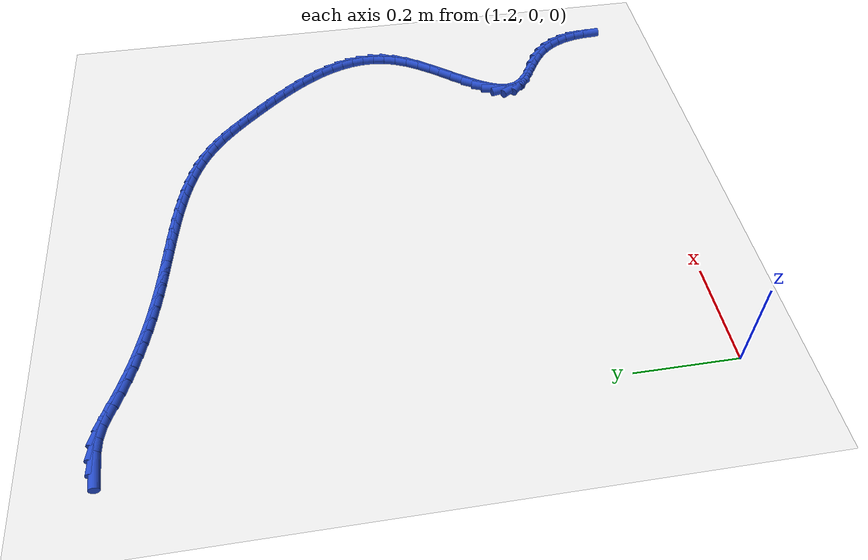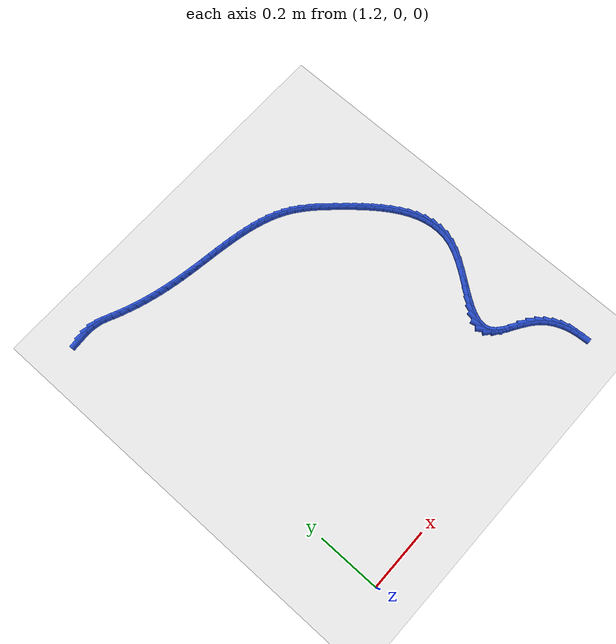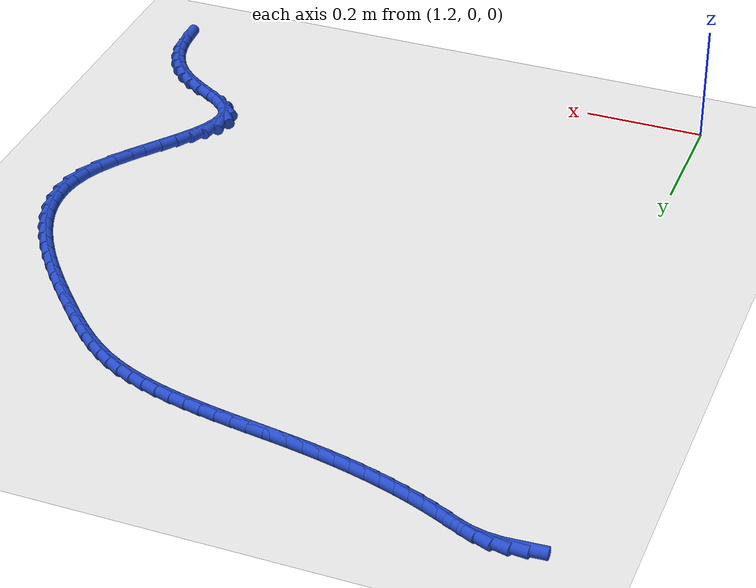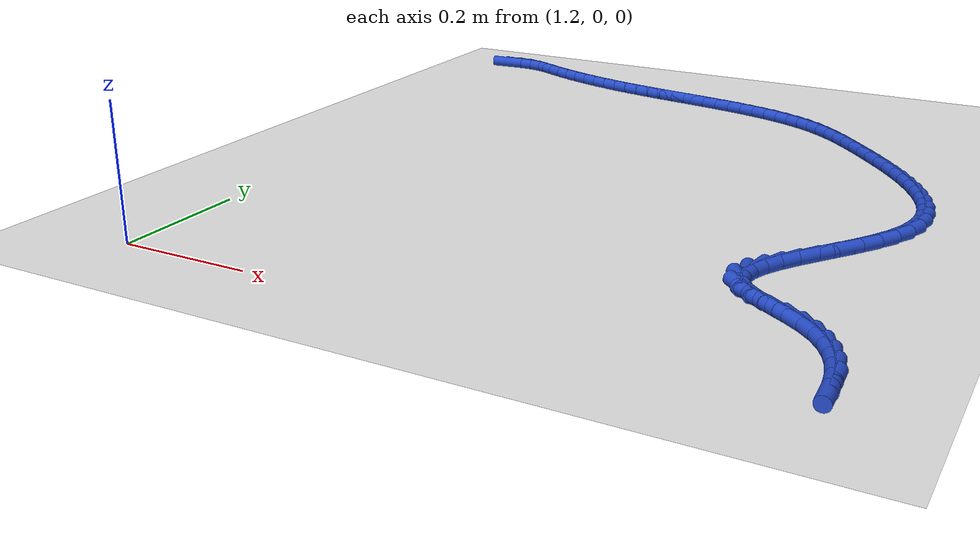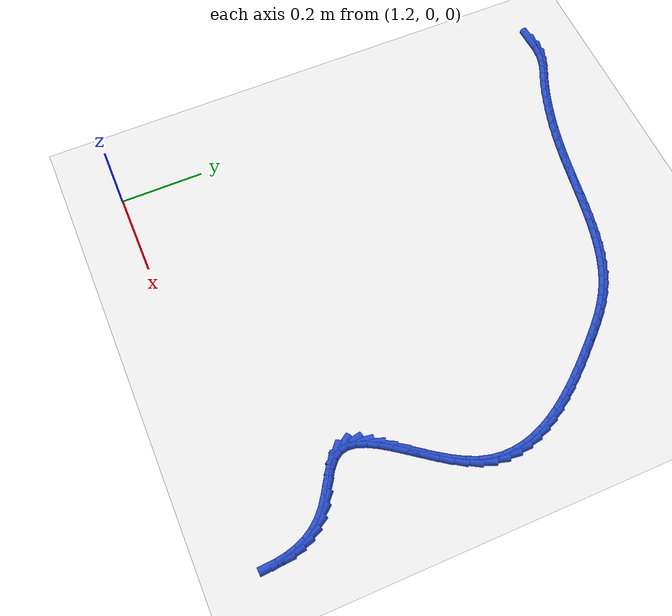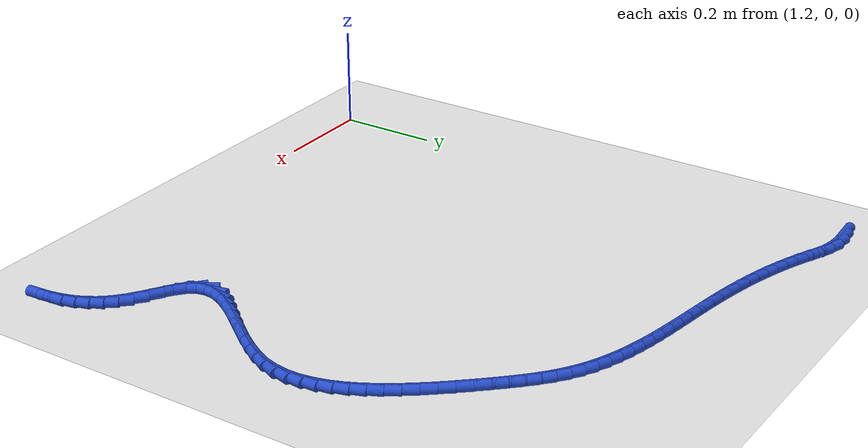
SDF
<sdf version="1.6">
 <world name="default">
  <model name="ground_plane">
   <static>1</static>
   <link name="link">
    <collision name="collision">
     <geometry><plane><normal>0 0 1</normal><size>100 100</size></plane></geometry>
     <surface><friction><ode><mu>100</mu><mu2>50</mu2></ode></friction></surface>
    </collision>
    <visual name="visual">
     <cast_shadows>0</cast_shadows>
     <geometry><plane><normal>0 0 1</normal><size>100 100</size></plane></geometry>
     <material>
      <script><uri>file://media/materials/scripts/gazebo.material</uri><name>Gazebo/WhiteGlow</name></script>
     </material>
    </visual>
   </link>
  </model>
  <model name="line">
   <link name="link_70">
    <pose>1.1589581540968892 1.1202611505341393 0.01 0 1.57 0.0611994217538666</pose>
    <collision name="collision">
     <geometry><cylinder><radius>0.01</radius><length>0.08</length></cylinder></geometry>
    </collision>
    <visual name="visual">
     <material>
      <script><name>Gazebo/Blue</name><uri>file://media/materials/scripts/gazebo.material</uri></script>
     </material>
     <geometry><cylinder><radius>0.01</radius><length>0.08</length></cylinder></geometry>
    </visual>
   </link>
   <link name="link_71">
    <pose>1.1839929926719779 1.1217951838307076 0.01 0 1.57 -0.07154446064471666</pose>
    <collision name="collision">
     <geometry><cylinder><radius>0.01</radius><length>0.08</length></cylinder></geometry>
    </collision>
    <visual name="visual">
     <material>
      <script><name>Gazebo/Blue</name><uri>file://media/materials/scripts/gazebo.material</uri></script>
     </material>
     <geometry><cylinder><radius>0.01</radius><length>0.08</length></cylinder></geometry>
    </visual>
   </link>
   <link name="link_72">
    <pose>1.2087941225886858 1.1200177666971256 0.01 0 1.57 -0.2204131755700757</pose>
    <collision name="collision">
     <geometry><cylinder><radius>0.01</radius><length>0.08</length></cylinder></geometry>
    </collision>
    <visual name="visual">
     <material>
      <script><name>Gazebo/Blue</name><uri>file://media/materials/scripts/gazebo.material</uri></script>
     </material>
     <geometry><cylinder><radius>0.01</radius><length>0.08</length></cylinder></geometry>
    </visual>
   </link>
   <link name="link_73">
    <pose>1.2332986169918776 1.1145274539026162 0.01 0 1.57 -0.3610902284726909</pose>
    <collision name="collision">
     <geometry><cylinder><radius>0.01</radius><length>0.08</length></cylinder></geometry>
    </collision>
    <visual name="visual">
     <material>
      <script><name>Gazebo/Blue</name><uri>file://media/materials/scripts/gazebo.material</uri></script>
     </material>
     <geometry><cylinder><radius>0.01</radius><length>0.08</length></cylinder></geometry>
    </visual>
   </link>
   <link name="link_74">
    <pose>1.2574949582882757 1.1053897526934688 0.01 0 1.57 -0.4204750961533314</pose>
    <collision name="collision">
     <geometry><cylinder><radius>0.01</radius><length>0.08</length></cylinder></geometry>
    </collision>
    <visual name="visual">
     <material>
      <script><name>Gazebo/Blue</name><uri>file://media/materials/scripts/gazebo.material</uri></script>
     </material>
     <geometry><cylinder><radius>0.01</radius><length>0.08</length></cylinder></geometry>
    </visual>
   </link>
   <link name="link_75">
    <pose>1.2815860327060415 1.0946176091994413 0.01 0 1.57 -0.40242799050139894</pose>
    <collision name="collision">
     <geometry><cylinder><radius>0.01</radius><length>0.08</length></cylinder></geometry>
    </collision>
    <visual name="visual">
     <material>
      <script><name>Gazebo/Blue</name><uri>file://media/materials/scripts/gazebo.material</uri></script>
     </material>
     <geometry><cylinder><radius>0.01</radius><length>0.08</length></cylinder></geometry>
    </visual>
   </link>
   <link name="link_76">
    <pose>1.3057911980313146 1.084314482843826 0.01 0 1.57 -0.3697244293657313</pose>
    <collision name="collision">
     <geometry><cylinder><radius>0.01</radius><length>0.08</length></cylinder></geometry>
    </collision>
    <visual name="visual">
     <material>
      <script><name>Gazebo/Blue</name><uri>file://media/materials/scripts/gazebo.material</uri></script>
     </material>
     <geometry><cylinder><radius>0.01</radius><length>0.08</length></cylinder></geometry>
    </visual>
   </link>
   <link name="link_77">
    <pose>1.330167625074271 1.0748674919380468 0.01 0 1.57 -0.33841661645001114</pose>
    <collision name="collision">
     <geometry><cylinder><radius>0.01</radius><length>0.08</length></cylinder></geometry>
    </collision>
    <visual name="visual">
     <material>
      <script><name>Gazebo/Blue</name><uri>file://media/materials/scripts/gazebo.material</uri></script>
     </material>
     <geometry><cylinder><radius>0.01</radius><length>0.08</length></cylinder></geometry>
    </visual>
   </link>
   <link name="link_78">
    <pose>1.3547307724270434 1.066222335960503 0.01 0 1.57 -0.3087033152100103</pose>
    <collision name="collision">
     <geometry><cylinder><radius>0.01</radius><length>0.08</length></cylinder></geometry>
    </collision>
    <visual name="visual">
     <material>
      <script><name>Gazebo/Blue</name><uri>file://media/materials/scripts/gazebo.material</uri></script>
     </material>
     <geometry><cylinder><radius>0.01</radius><length>0.08</length></cylinder></geometry>
    </visual>
   </link>
   <link name="link_79">
    <pose>1.3794960986475748 1.058324714027791 0.01 0 1.57 -0.28075512069613523</pose>
    <collision name="collision">
     <geometry><cylinder><radius>0.01</radius><length>0.08</length></cylinder></geometry>
    </collision>
    <visual name="visual">
     <material>
      <script><name>Gazebo/Blue</name><uri>file://media/materials/scripts/gazebo.material</uri></script>
     </material>
     <geometry><cylinder><radius>0.01</radius><length>0.08</length></cylinder></geometry>
    </visual>
   </link>
   <link name="link_80">
    <pose>1.4044790622938088 1.0511203252565058 0.01 0 1.57 -0.2547127809886578</pose>
    <collision name="collision">
     <geometry><cylinder><radius>0.01</radius><length>0.08</length></cylinder></geometry>
    </collision>
    <visual name="visual">
     <material>
      <script><name>Gazebo/Blue</name><uri>file://media/materials/scripts/gazebo.material</uri></script>
     </material>
     <geometry><cylinder><radius>0.01</radius><length>0.08</length></cylinder></geometry>
    </visual>
   </link>
   <link name="link_81">
    <pose>1.4296951219236886 1.0445548687632433 0.01 0 1.57 -0.2306869429809007</pose>
    <collision name="collision">
     <geometry><cylinder><radius>0.01</radius><length>0.08</length></cylinder></geometry>
    </collision>
    <visual name="visual">
     <material>
      <script><name>Gazebo/Blue</name><uri>file://media/materials/scripts/gazebo.material</uri></script>
     </material>
     <geometry><cylinder><radius>0.01</radius><length>0.08</length></cylinder></geometry>
    </visual>
   </link>
   <link name="link_82">
    <pose>1.4551597360951583 1.038574043664599 0.01 0 1.57 -0.20875911278902906</pose>
    <collision name="collision">
     <geometry><cylinder><radius>0.01</radius><length>0.08</length></cylinder></geometry>
    </collision>
    <visual name="visual">
     <material>
      <script><name>Gazebo/Blue</name><uri>file://media/materials/scripts/gazebo.material</uri></script>
     </material>
     <geometry><cylinder><radius>0.01</radius><length>0.08</length></cylinder></geometry>
    </visual>
   </link>
   <link name="link_83">
    <pose>1.4808883633661607 1.0331235490771686 0.01 0 1.57 -0.1889835487383789</pose>
    <collision name="collision">
     <geometry><cylinder><radius>0.01</radius><length>0.08</length></cylinder></geometry>
    </collision>
    <visual name="visual">
     <material>
      <script><name>Gazebo/Blue</name><uri>file://media/materials/scripts/gazebo.material</uri></script>
     </material>
     <geometry><cylinder><radius>0.01</radius><length>0.08</length></cylinder></geometry>
    </visual>
   </link>
   <link name="link_84">
    <pose>1.5068964622946392 1.0281490841175478 0.01 0 1.57 -0.17146783466972715</pose>
    <collision name="collision">
     <geometry><cylinder><radius>0.01</radius><length>0.08</length></cylinder></geometry>
    </collision>
    <visual name="visual">
     <material>
      <script><name>Gazebo/Blue</name><uri>file://media/materials/scripts/gazebo.material</uri></script>
     </material>
     <geometry><cylinder><radius>0.01</radius><length>0.08</length></cylinder></geometry>
    </visual>
   </link>
   <link name="link_85">
    <pose>1.5331974368084056 1.0235945893337763 0.01 0 1.57 -0.15819138361768345</pose>
    <collision name="collision">
     <geometry><cylinder><radius>0.01</radius><length>0.08</length></cylinder></geometry>
    </collision>
    <visual name="visual">
     <material>
      <script><name>Gazebo/Blue</name><uri>file://media/materials/scripts/gazebo.material</uri></script>
     </material>
     <geometry><cylinder><radius>0.01</radius><length>0.08</length></cylinder></geometry>
    </visual>
   </link>
   <link name="link_86">
    <pose>1.5597515911157567 1.0193585569493422 0.01 0 1.57 -0.15111643380307038</pose>
    <collision name="collision">
     <geometry><cylinder><radius>0.01</radius><length>0.08</length></cylinder></geometry>
    </collision>
    <visual name="visual">
     <material>
      <script><name>Gazebo/Blue</name><uri>file://media/materials/scripts/gazebo.material</uri></script>
     </material>
     <geometry><cylinder><radius>0.01</radius><length>0.08</length></cylinder></geometry>
    </visual>
   </link>
   <link name="link_87">
    <pose>1.5864626650923317 1.0152910654828757 0.01 0 1.57 -0.15020042961188665</pose>
    <collision name="collision">
     <geometry><cylinder><radius>0.01</radius><length>0.08</length></cylinder></geometry>
    </collision>
    <visual name="visual">
     <material>
      <script><name>Gazebo/Blue</name><uri>file://media/materials/scripts/gazebo.material</uri></script>
     </material>
     <geometry><cylinder><radius>0.01</radius><length>0.08</length></cylinder></geometry>
    </visual>
   </link>
   <link name="link_88">
    <pose>1.6132316501930821 1.0112398410655257 0.01 0 1.57 -0.15539841927579687</pose>
    <collision name="collision">
     <geometry><cylinder><radius>0.01</radius><length>0.08</length></cylinder></geometry>
    </collision>
    <visual name="visual">
     <material>
      <script><name>Gazebo/Blue</name><uri>file://media/materials/scripts/gazebo.material</uri></script>
     </material>
     <geometry><cylinder><radius>0.01</radius><length>0.08</length></cylinder></geometry>
    </visual>
   </link>
   <link name="link_89">
    <pose>1.6399595378729597 1.0070526098284414 0.01 0 1.57 -0.1667662752584248</pose>
    <collision name="collision">
     <geometry><cylinder><radius>0.01</radius><length>0.08</length></cylinder></geometry>
    </collision>
    <visual name="visual">
     <material>
      <script><name>Gazebo/Blue</name><uri>file://media/materials/scripts/gazebo.material</uri></script>
     </material>
     <geometry><cylinder><radius>0.01</radius><length>0.08</length></cylinder></geometry>
    </visual>
   </link>
   <link name="link_90">
    <pose>1.6665473195869163 1.002577097902772 0.01 0 1.57 -0.1844565591627697</pose>
    <collision name="collision">
     <geometry><cylinder><radius>0.01</radius><length>0.08</length></cylinder></geometry>
    </collision>
    <visual name="visual">
     <material>
      <script><name>Gazebo/Blue</name><uri>file://media/materials/scripts/gazebo.material</uri></script>
     </material>
     <geometry><cylinder><radius>0.01</radius><length>0.08</length></cylinder></geometry>
    </visual>
   </link>
   <link name="link_91">
    <pose>1.6928959867899036 0.9976610314196667 0.01 0 1.57 -0.20871045109518677</pose>
    <collision name="collision">
     <geometry><cylinder><radius>0.01</radius><length>0.08</length></cylinder></geometry>
    </collision>
    <visual name="visual">
     <material>
      <script><name>Gazebo/Blue</name><uri>file://media/materials/scripts/gazebo.material</uri></script>
     </material>
     <geometry><cylinder><radius>0.01</radius><length>0.08</length></cylinder></geometry>
    </visual>
   </link>
   <link name="link_92">
    <pose>1.7189065309368723 0.9921521365102743 0.01 0 1.57 -0.23984341753387384</pose>
    <collision name="collision">
     <geometry><cylinder><radius>0.01</radius><length>0.08</length></cylinder></geometry>
    </collision>
    <visual name="visual">
     <material>
      <script><name>Gazebo/Blue</name><uri>file://media/materials/scripts/gazebo.material</uri></script>
     </material>
     <geometry><cylinder><radius>0.01</radius><length>0.08</length></cylinder></geometry>
    </visual>
   </link>
   <link name="link_93">
    <pose>1.7444799434827747 0.9858981393057441 0.01 0 1.57 -0.2782208927456842</pose>
    <collision name="collision">
     <geometry><cylinder><radius>0.01</radius><length>0.08</length></cylinder></geometry>
    </collision>
    <visual name="visual">
     <material>
      <script><name>Gazebo/Blue</name><uri>file://media/materials/scripts/gazebo.material</uri></script>
     </material>
     <geometry><cylinder><radius>0.01</radius><length>0.08</length></cylinder></geometry>
    </visual>
   </link>
   <link name="link_94">
    <pose>1.769517215882562 0.9787467659372253 0.01 0 1.57 -0.3242189553139659</pose>
    <collision name="collision">
     <geometry><cylinder><radius>0.01</radius><length>0.08</length></cylinder></geometry>
    </collision>
    <visual name="visual">
     <material>
      <script><name>Gazebo/Blue</name><uri>file://media/materials/scripts/gazebo.material</uri></script>
     </material>
     <geometry><cylinder><radius>0.01</radius><length>0.08</length></cylinder></geometry>
    </visual>
   </link>
   <link name="link_95">
    <pose>1.793919339591187 0.9705457425358668 0.01 0 1.57 -0.3781643731037044</pose>
    <collision name="collision">
     <geometry><cylinder><radius>0.01</radius><length>0.08</length></cylinder></geometry>
    </collision>
    <visual name="visual">
     <material>
      <script><name>Gazebo/Blue</name><uri>file://media/materials/scripts/gazebo.material</uri></script>
     </material>
     <geometry><cylinder><radius>0.01</radius><length>0.08</length></cylinder></geometry>
    </visual>
   </link>
   <link name="link_96">
    <pose>1.8175873060636003 0.961142795232818 0.01 0 1.57 -0.4402496702399277</pose>
    <collision name="collision">
     <geometry><cylinder><radius>0.01</radius><length>0.08</length></cylinder></geometry>
    </collision>
    <visual name="visual">
     <material>
      <script><name>Gazebo/Blue</name><uri>file://media/materials/scripts/gazebo.material</uri></script>
     </material>
     <geometry><cylinder><radius>0.01</radius><length>0.08</length></cylinder></geometry>
    </visual>
   </link>
   <link name="link_97">
    <pose>1.8404221067547526 0.9503856501592274 0.01 0 1.57 -0.5104238785693327</pose>
    <collision name="collision">
     <geometry><cylinder><radius>0.01</radius><length>0.08</length></cylinder></geometry>
    </collision>
    <visual name="visual">
     <material>
      <script><name>Gazebo/Blue</name><uri>file://media/materials/scripts/gazebo.material</uri></script>
     </material>
     <geometry><cylinder><radius>0.01</radius><length>0.08</length></cylinder></geometry>
    </visual>
   </link>
   <link name="link_98">
    <pose>1.8623247331195971 0.9381220334462449 0.01 0 1.57 -0.5873345692629962</pose>
    <collision name="collision">
     <geometry><cylinder><radius>0.01</radius><length>0.08</length></cylinder></geometry>
    </collision>
    <visual name="visual">
     <material>
      <script><name>Gazebo/Blue</name><uri>file://media/materials/scripts/gazebo.material</uri></script>
     </material>
     <geometry><cylinder><radius>0.01</radius><length>0.08</length></cylinder></geometry>
    </visual>
   </link>
   <link name="link_99">
    <pose>1.8832133101495303 0.9242164626469254 0.01 0 1.57 -0.659608445914308</pose>
    <collision name="collision">
     <geometry><cylinder><radius>0.01</radius><length>0.08</length></cylinder></geometry>
    </collision>
    <visual name="visual">
     <material>
      <script><name>Gazebo/Blue</name><uri>file://media/materials/scripts/gazebo.material</uri></script>
     </material>
     <geometry><cylinder><radius>0.01</radius><length>0.08</length></cylinder></geometry>
    </visual>
   </link>
   <link name="link_100">
    <pose>1.9031963613513074 0.9087200520401008 0.01 0 1.57 -0.7196502114175876</pose>
    <collision name="collision">
     <geometry><cylinder><radius>0.01</radius><length>0.08</length></cylinder></geometry>
    </collision>
    <visual name="visual">
     <material>
      <script><name>Gazebo/Blue</name><uri>file://media/materials/scripts/gazebo.material</uri></script>
     </material>
     <geometry><cylinder><radius>0.01</radius><length>0.08</length></cylinder></geometry>
    </visual>
   </link>
   <link name="link_101">
    <pose>1.9225012039849396 0.8918003376390824 0.01 0 1.57 -0.7669812712496561</pose>
    <collision name="collision">
     <geometry><cylinder><radius>0.01</radius><length>0.08</length></cylinder></geometry>
    </collision>
    <visual name="visual">
     <material>
      <script><name>Gazebo/Blue</name><uri>file://media/materials/scripts/gazebo.material</uri></script>
     </material>
     <geometry><cylinder><radius>0.01</radius><length>0.08</length></cylinder></geometry>
    </visual>
   </link>
   <link name="link_102">
    <pose>1.9413569611989472 0.8736266252865433 0.01 0 1.57 -0.8018268916068064</pose>
    <collision name="collision">
     <geometry><cylinder><radius>0.01</radius><length>0.08</length></cylinder></geometry>
    </collision>
    <visual name="visual">
     <material>
      <script><name>Gazebo/Blue</name><uri>file://media/materials/scripts/gazebo.material</uri></script>
     </material>
     <geometry><cylinder><radius>0.01</radius><length>0.08</length></cylinder></geometry>
    </visual>
   </link>
   <link name="link_103">
    <pose>1.959992756141852 0.8543682208251577 0.01 0 1.57 -0.824761752444399</pose>
    <collision name="collision">
     <geometry><cylinder><radius>0.01</radius><length>0.08</length></cylinder></geometry>
    </collision>
    <visual name="visual">
     <material>
      <script><name>Gazebo/Blue</name><uri>file://media/materials/scripts/gazebo.material</uri></script>
     </material>
     <geometry><cylinder><radius>0.01</radius><length>0.08</length></cylinder></geometry>
    </visual>
   </link>
   <link name="link_104">
    <pose>1.9786377119621754 0.834194430097599 0.01 0 1.57 -0.8381616622709979</pose>
    <collision name="collision">
     <geometry><cylinder><radius>0.01</radius><length>0.08</length></cylinder></geometry>
    </collision>
    <visual name="visual">
     <material>
      <script><name>Gazebo/Blue</name><uri>file://media/materials/scripts/gazebo.material</uri></script>
     </material>
     <geometry><cylinder><radius>0.01</radius><length>0.08</length></cylinder></geometry>
    </visual>
   </link>
   <link name="link_105">
    <pose>1.9974690169691591 0.8132631635757033 0.01 0 1.57 -0.8539542199622712</pose>
    <collision name="collision">
     <geometry><cylinder><radius>0.01</radius><length>0.08</length></cylinder></geometry>
    </collision>
    <visual name="visual">
     <material>
      <script><name>Gazebo/Blue</name><uri>file://media/materials/scripts/gazebo.material</uri></script>
     </material>
     <geometry><cylinder><radius>0.01</radius><length>0.08</length></cylinder></geometry>
    </visual>
   </link>
   <link name="link_106">
    <pose>2.0163022103125305 0.7916529798676375 0.01 0 1.57 -0.8771225827197177</pose>
    <collision name="collision">
     <geometry><cylinder><radius>0.01</radius><length>0.08</length></cylinder></geometry>
    </collision>
    <visual name="visual">
     <material>
      <script><name>Gazebo/Blue</name><uri>file://media/materials/scripts/gazebo.material</uri></script>
     </material>
     <geometry><cylinder><radius>0.01</radius><length>0.08</length></cylinder></geometry>
    </visual>
   </link>
   <link name="link_107">
    <pose>2.034799029303389 0.7694086908903095 0.01 0 1.57 -0.9080616971966106</pose>
    <collision name="collision">
     <geometry><cylinder><radius>0.01</radius><length>0.08</length></cylinder></geometry>
    </collision>
    <visual name="visual">
     <material>
      <script><name>Gazebo/Blue</name><uri>file://media/materials/scripts/gazebo.material</uri></script>
     </material>
     <geometry><cylinder><radius>0.01</radius><length>0.08</length></cylinder></geometry>
    </visual>
   </link>
   <link name="link_108">
    <pose>2.0526206467191037 0.7465749846924996 0.01 0 1.57 -0.9474746524748668</pose>
    <collision name="collision">
     <geometry><cylinder><radius>0.01</radius><length>0.08</length></cylinder></geometry>
    </collision>
    <visual name="visual">
     <material>
      <script><name>Gazebo/Blue</name><uri>file://media/materials/scripts/gazebo.material</uri></script>
     </material>
     <geometry><cylinder><radius>0.01</radius><length>0.08</length></cylinder></geometry>
    </visual>
   </link>
   <link name="link_109">
    <pose>2.069428235337046 0.7231965493229903 0.01 0 1.57 -0.9963747948988158</pose>
    <collision name="collision">
     <geometry><cylinder><radius>0.01</radius><length>0.08</length></cylinder></geometry>
    </collision>
    <visual name="visual">
     <material>
      <script><name>Gazebo/Blue</name><uri>file://media/materials/scripts/gazebo.material</uri></script>
     </material>
     <geometry><cylinder><radius>0.01</radius><length>0.08</length></cylinder></geometry>
    </visual>
   </link>
   <link name="link_110">
    <pose>2.084882967934585 0.699318072830563 0.01 0 1.57 -1.0560602162386132</pose>
    <collision name="collision">
     <geometry><cylinder><radius>0.01</radius><length>0.08</length></cylinder></geometry>
    </collision>
    <visual name="visual">
     <material>
      <script><name>Gazebo/Blue</name><uri>file://media/materials/scripts/gazebo.material</uri></script>
     </material>
     <geometry><cylinder><radius>0.01</radius><length>0.08</length></cylinder></geometry>
    </visual>
   </link>
   <link name="link_111">
    <pose>2.09864601728909 0.6749842432639989 0.01 0 1.57 -1.128043828531807</pose>
    <collision name="collision">
     <geometry><cylinder><radius>0.01</radius><length>0.08</length></cylinder></geometry>
    </collision>
    <visual name="visual">
     <material>
      <script><name>Gazebo/Blue</name><uri>file://media/materials/scripts/gazebo.material</uri></script>
     </material>
     <geometry><cylinder><radius>0.01</radius><length>0.08</length></cylinder></geometry>
    </visual>
   </link>
   <link name="link_112">
    <pose>2.110378556177932 0.6502397486720799 0.01 0 1.57 -1.2138852815052226</pose>
    <collision name="collision">
     <geometry><cylinder><radius>0.01</radius><length>0.08</length></cylinder></geometry>
    </collision>
    <visual name="visual">
     <material>
      <script><name>Gazebo/Blue</name><uri>file://media/materials/scripts/gazebo.material</uri></script>
     </material>
     <geometry><cylinder><radius>0.01</radius><length>0.08</length></cylinder></geometry>
    </visual>
   </link>
   <link name="link_113">
    <pose>2.1197417573784807 0.6251292771035871 0.01 0 1.57 -1.3148533321145586</pose>
    <collision name="collision">
     <geometry><cylinder><radius>0.01</radius><length>0.08</length></cylinder></geometry>
    </collision>
    <visual name="visual">
     <material>
      <script><name>Gazebo/Blue</name><uri>file://media/materials/scripts/gazebo.material</uri></script>
     </material>
     <geometry><cylinder><radius>0.01</radius><length>0.08</length></cylinder></geometry>
    </visual>
   </link>
   <link name="link_114">
    <pose>2.1263967936681056 0.5996975166073026 0.01 0 1.57 -1.4313618739578957</pose>
    <collision name="collision">
     <geometry><cylinder><radius>0.01</radius><length>0.08</length></cylinder></geometry>
    </collision>
    <visual name="visual">
     <material>
      <script><name>Gazebo/Blue</name><uri>file://media/materials/scripts/gazebo.material</uri></script>
     </material>
     <geometry><cylinder><radius>0.01</radius><length>0.08</length></cylinder></geometry>
    </visual>
   </link>
   <link name="link_115">
    <pose>2.1300048378241763 0.5739891552320077 0.01 0 1.57 -1.5622297495097623</pose>
    <collision name="collision">
     <geometry><cylinder><radius>0.01</radius><length>0.08</length></cylinder></geometry>
    </collision>
    <visual name="visual">
     <material>
      <script><name>Gazebo/Blue</name><uri>file://media/materials/scripts/gazebo.material</uri></script>
     </material>
     <geometry><cylinder><radius>0.01</radius><length>0.08</length></cylinder></geometry>
    </visual>
   </link>
   <link name="link_116">
    <pose>2.1302270626240634 0.548048881026484 0.01 0 1.57 1.4375395640072908</pose>
    <collision name="collision">
     <geometry><cylinder><radius>0.01</radius><length>0.08</length></cylinder></geometry>
    </collision>
    <visual name="visual">
     <material>
      <script><name>Gazebo/Blue</name><uri>file://media/materials/scripts/gazebo.material</uri></script>
     </material>
     <geometry><cylinder><radius>0.01</radius><length>0.08</length></cylinder></geometry>
    </visual>
   </link>
   <link name="link_117">
    <pose>2.1267246408451363 0.5219213820395123 0.01 0 1.57 1.2903803343829274</pose>
    <collision name="collision">
     <geometry><cylinder><radius>0.01</radius><length>0.08</length></cylinder></geometry>
    </collision>
    <visual name="visual">
     <material>
      <script><name>Gazebo/Blue</name><uri>file://media/materials/scripts/gazebo.material</uri></script>
     </material>
     <geometry><cylinder><radius>0.01</radius><length>0.08</length></cylinder></geometry>
    </visual>
   </link>
   <link name="link_118">
    <pose>2.119158745264766 0.4956513463198753 0.01 0 1.57 1.1492733049463564</pose>
    <collision name="collision">
     <geometry><cylinder><radius>0.01</radius><length>0.08</length></cylinder></geometry>
    </collision>
    <visual name="visual">
     <material>
      <script><name>Gazebo/Blue</name><uri>file://media/materials/scripts/gazebo.material</uri></script>
     </material>
     <geometry><cylinder><radius>0.01</radius><length>0.08</length></cylinder></geometry>
    </visual>
   </link>
   <link name="link_119">
    <pose>2.1073407657382033 0.46929549178435065 0.01 0 1.57 1.043694700651742</pose>
    <collision name="collision">
     <geometry><cylinder><radius>0.01</radius><length>0.08</length></cylinder></geometry>
    </collision>
    <visual name="visual">
     <material>
      <script><name>Gazebo/Blue</name><uri>file://media/materials/scripts/gazebo.material</uri></script>
     </material>
     <geometry><cylinder><radius>0.01</radius><length>0.08</length></cylinder></geometry>
    </visual>
   </link>
   <link name="link_120">
    <pose>2.092028014569214 0.4429862888696761 0.01 0 1.57 0.9753377513030134</pose>
    <collision name="collision">
     <geometry><cylinder><radius>0.01</radius><length>0.08</length></cylinder></geometry>
    </collision>
    <visual name="visual">
     <material>
      <script><name>Gazebo/Blue</name><uri>file://media/materials/scripts/gazebo.material</uri></script>
     </material>
     <geometry><cylinder><radius>0.01</radius><length>0.08</length></cylinder></geometry>
    </visual>
   </link>
   <link name="link_121">
    <pose>2.0743450612596317 0.4168856191532925 0.01 0 1.57 0.9365588175868333</pose>
    <collision name="collision">
     <geometry><cylinder><radius>0.01</radius><length>0.08</length></cylinder></geometry>
    </collision>
    <visual name="visual">
     <material>
      <script><name>Gazebo/Blue</name><uri>file://media/materials/scripts/gazebo.material</uri></script>
     </material>
     <geometry><cylinder><radius>0.01</radius><length>0.08</length></cylinder></geometry>
    </visual>
   </link>
   <link name="link_122">
    <pose>2.0554172881126562 0.39115542930439445 0.01 0 1.57 0.9235243078568612</pose>
    <collision name="collision">
     <geometry><cylinder><radius>0.01</radius><length>0.08</length></cylinder></geometry>
    </collision>
    <visual name="visual">
     <material>
      <script><name>Gazebo/Blue</name><uri>file://media/materials/scripts/gazebo.material</uri></script>
     </material>
     <geometry><cylinder><radius>0.01</radius><length>0.08</length></cylinder></geometry>
    </visual>
   </link>
   <link name="link_123">
    <pose>2.0363700774314855 0.36595766599217766 0.01 0 1.57 0.9361363839001391</pose>
    <collision name="collision">
     <geometry><cylinder><radius>0.01</radius><length>0.08</length></cylinder></geometry>
    </collision>
    <visual name="visual">
     <material>
      <script><name>Gazebo/Blue</name><uri>file://media/materials/scripts/gazebo.material</uri></script>
     </material>
     <geometry><cylinder><radius>0.01</radius><length>0.08</length></cylinder></geometry>
    </visual>
   </link>
   <link name="link_124">
    <pose>2.0183288115193183 0.34145427588583677 0.01 0 1.57 0.9785540499055176</pose>
    <collision name="collision">
     <geometry><cylinder><radius>0.01</radius><length>0.08</length></cylinder></geometry>
    </collision>
    <visual name="visual">
     <material>
      <script><name>Gazebo/Blue</name><uri>file://media/materials/scripts/gazebo.material</uri></script>
     </material>
     <geometry><cylinder><radius>0.01</radius><length>0.08</length></cylinder></geometry>
    </visual>
   </link>
   <link name="link_125">
    <pose>2.0024188726793524 0.31780720565456677 0.01 0 1.57 1.0609440756936885</pose>
    <collision name="collision">
     <geometry><cylinder><radius>0.01</radius><length>0.08</length></cylinder></geometry>
    </collision>
    <visual name="visual">
     <material>
      <script><name>Gazebo/Blue</name><uri>file://media/materials/scripts/gazebo.material</uri></script>
     </material>
     <geometry><cylinder><radius>0.01</radius><length>0.08</length></cylinder></geometry>
    </visual>
   </link>
   <link name="link_126">
    <pose>1.989765643214787 0.2951784019675623 0.01 0 1.57 1.2027422621874964</pose>
    <collision name="collision">
     <geometry><cylinder><radius>0.01</radius><length>0.08</length></cylinder></geometry>
    </collision>
    <visual name="visual">
     <material>
      <script><name>Gazebo/Blue</name><uri>file://media/materials/scripts/gazebo.material</uri></script>
     </material>
     <geometry><cylinder><radius>0.01</radius><length>0.08</length></cylinder></geometry>
    </visual>
   </link>
   <link name="link_127">
    <pose>1.9814945054288207 0.2737298114940189 0.01 0 1.57 1.4342005323357805</pose>
    <collision name="collision">
     <geometry><cylinder><radius>0.01</radius><length>0.08</length></cylinder></geometry>
    </collision>
    <visual name="visual">
     <material>
      <script><name>Gazebo/Blue</name><uri>file://media/materials/scripts/gazebo.material</uri></script>
     </material>
     <geometry><cylinder><radius>0.01</radius><length>0.08</length></cylinder></geometry>
    </visual>
   </link>
   <link name="link_128">
    <pose>1.9787308416246523 0.2536233809031315 0.01 0 1.57 -1.365725111255191</pose>
    <collision name="collision">
     <geometry><cylinder><radius>0.01</radius><length>0.08</length></cylinder></geometry>
    </collision>
    <visual name="visual">
     <material>
      <script><name>Gazebo/Blue</name><uri>file://media/materials/scripts/gazebo.material</uri></script>
     </material>
     <geometry><cylinder><radius>0.01</radius><length>0.08</length></cylinder></geometry>
    </visual>
   </link>
   <link name="link_129">
    <pose>1.9826000341054792 0.2350210568640948 0.01 0 1.57 -0.9741292234277197</pose>
    <collision name="collision">
     <geometry><cylinder><radius>0.01</radius><length>0.08</length></cylinder></geometry>
    </collision>
    <visual name="visual">
     <material>
      <script><name>Gazebo/Blue</name><uri>file://media/materials/scripts/gazebo.material</uri></script>
     </material>
     <geometry><cylinder><radius>0.01</radius><length>0.08</length></cylinder></geometry>
    </visual>
   </link>
   <link name="link_130">
    <pose>1.9941213094843384 0.21805942399652792 0.01 0 1.57 -0.7078852835850433</pose>
    <collision name="collision">
     <geometry><cylinder><radius>0.01</radius><length>0.08</length></cylinder></geometry>
    </collision>
    <visual name="visual">
     <material>
      <script><name>Gazebo/Blue</name><uri>file://media/materials/scripts/gazebo.material</uri></script>
     </material>
     <geometry><cylinder><radius>0.01</radius><length>0.08</length></cylinder></geometry>
    </visual>
   </link>
   <link name="link_131">
    <pose>2.01239784792711 0.202417297158408 0.01 0 1.57 -0.5898386115361219</pose>
    <collision name="collision">
     <geometry><cylinder><radius>0.01</radius><length>0.08</length></cylinder></geometry>
    </collision>
    <visual name="visual">
     <material>
      <script><name>Gazebo/Blue</name><uri>file://media/materials/scripts/gazebo.material</uri></script>
     </material>
     <geometry><cylinder><radius>0.01</radius><length>0.08</length></cylinder></geometry>
    </visual>
   </link>
   <link name="link_132">
    <pose>2.034869971936396 0.18737621171728513 0.01 0 1.57 -0.5627345265069473</pose>
    <collision name="collision">
     <geometry><cylinder><radius>0.01</radius><length>0.08</length></cylinder></geometry>
    </collision>
    <visual name="visual">
     <material>
      <script><name>Gazebo/Blue</name><uri>file://media/materials/scripts/gazebo.material</uri></script>
     </material>
     <geometry><cylinder><radius>0.01</radius><length>0.08</length></cylinder></geometry>
    </visual>
   </link>
   <link name="link_133">
    <pose>2.058922805142359 0.172204515273409 0.01 0 1.57 -0.6084157832033272</pose>
    <collision name="collision">
     <geometry><cylinder><radius>0.01</radius><length>0.08</length></cylinder></geometry>
    </collision>
    <visual name="visual">
     <material>
      <script><name>Gazebo/Blue</name><uri>file://media/materials/scripts/gazebo.material</uri></script>
     </material>
     <geometry><cylinder><radius>0.01</radius><length>0.08</length></cylinder></geometry>
    </visual>
   </link>
   <link name="link_134">
    <pose>2.081941471175161 0.15617055542702973 0.01 0 1.57 -0.7286494706294697</pose>
    <collision name="collision">
     <geometry><cylinder><radius>0.01</radius><length>0.08</length></cylinder></geometry>
    </collision>
    <visual name="visual">
     <material>
      <script><name>Gazebo/Blue</name><uri>file://media/materials/scripts/gazebo.material</uri></script>
     </material>
     <geometry><cylinder><radius>0.01</radius><length>0.08</length></cylinder></geometry>
    </visual>
   </link>
   <link name="link_135">
    <pose>2.1015990574566437 0.13862638915476314 0.01 0 1.57 -0.8793934203669982</pose>
    <collision name="collision">
     <geometry><cylinder><radius>0.01</radius><length>0.08</length></cylinder></geometry>
    </collision>
    <visual name="visual">
     <material>
      <script><name>Gazebo/Blue</name><uri>file://media/materials/scripts/gazebo.material</uri></script>
     </material>
     <geometry><cylinder><radius>0.01</radius><length>0.08</length></cylinder></geometry>
    </visual>
   </link>
   <link name="link_136">
    <pose>2.1174531818034232 0.11947189530753104 0.01 0 1.57 -1.0311105546634745</pose>
    <collision name="collision">
     <geometry><cylinder><radius>0.01</radius><length>0.08</length></cylinder></geometry>
    </collision>
    <visual name="visual">
     <material>
      <script><name>Gazebo/Blue</name><uri>file://media/materials/scripts/gazebo.material</uri></script>
     </material>
     <geometry><cylinder><radius>0.01</radius><length>0.08</length></cylinder></geometry>
    </visual>
   </link>
   <link name="link_137">
    <pose>2.1298193649966626 0.09882727065934585 0.01 0 1.57 -1.1751019534131635</pose>
    <collision name="collision">
     <geometry><cylinder><radius>0.01</radius><length>0.08</length></cylinder></geometry>
    </collision>
    <visual name="visual">
     <material>
      <script><name>Gazebo/Blue</name><uri>file://media/materials/scripts/gazebo.material</uri></script>
     </material>
     <geometry><cylinder><radius>0.01</radius><length>0.08</length></cylinder></geometry>
    </visual>
   </link>
   <link name="link_138">
    <pose>2.1390151927639423 0.07681331225196837 0.01 0 1.57 -1.3045946442477616</pose>
    <collision name="collision">
     <geometry><cylinder><radius>0.01</radius><length>0.08</length></cylinder></geometry>
    </collision>
    <visual name="visual">
     <material>
      <script><name>Gazebo/Blue</name><uri>file://media/materials/scripts/gazebo.material</uri></script>
     </material>
     <geometry><cylinder><radius>0.01</radius><length>0.08</length></cylinder></geometry>
    </visual>
   </link>
   <link name="link_139">
    <pose>2.1453582508328433 0.053550817127159395 0.01 0 1.57 -1.41592366182775</pose>
    <collision name="collision">
     <geometry><cylinder><radius>0.01</radius><length>0.08</length></cylinder></geometry>
    </collision>
    <visual name="visual">
     <material>
      <script><name>Gazebo/Blue</name><uri>file://media/materials/scripts/gazebo.material</uri></script>
     </material>
     <geometry><cylinder><radius>0.01</radius><length>0.08</length></cylinder></geometry>
    </visual>
   </link>
   <link name="link_140">
    <pose>2.1491661249309444 0.029160582326679334 0.01 0 1.57 -1.5082617261157578</pose>
    <collision name="collision">
     <geometry><cylinder><radius>0.01</radius><length>0.08</length></cylinder></geometry>
    </collision>
    <visual name="visual">
     <material>
      <script><name>Gazebo/Blue</name><uri>file://media/materials/scripts/gazebo.material</uri></script>
     </material>
     <geometry><cylinder><radius>0.01</radius><length>0.08</length></cylinder></geometry>
    </visual>
   </link>
  </model>
 </world>
</sdf>
